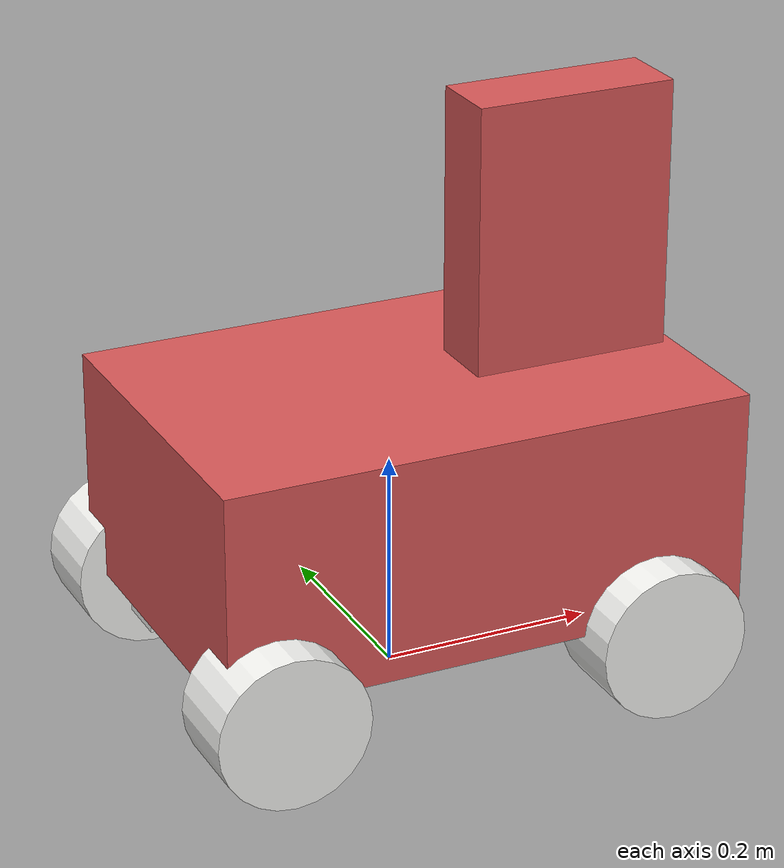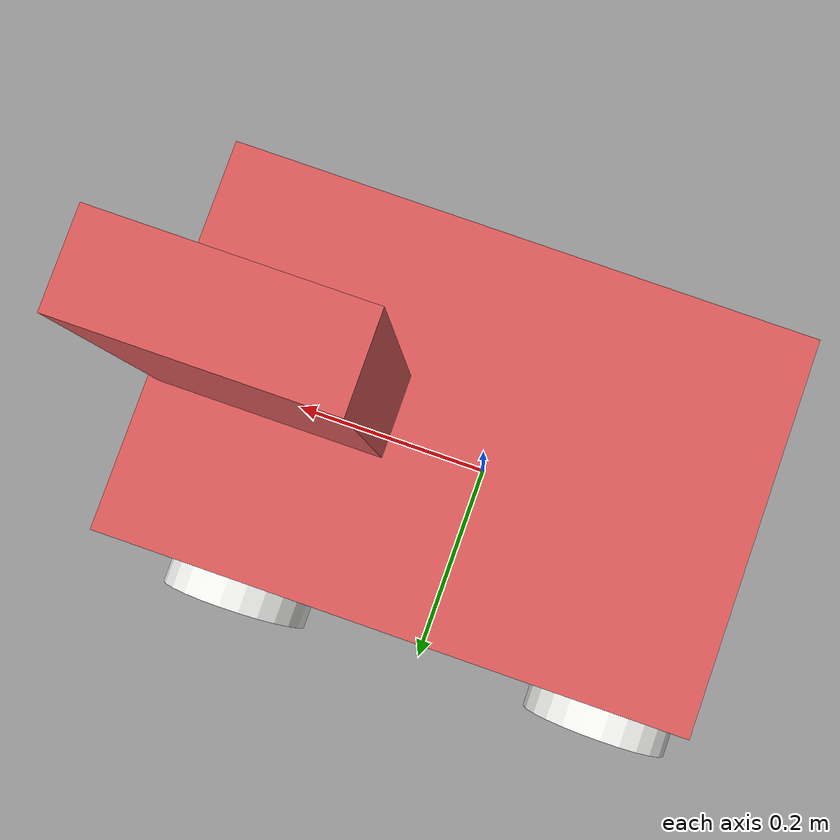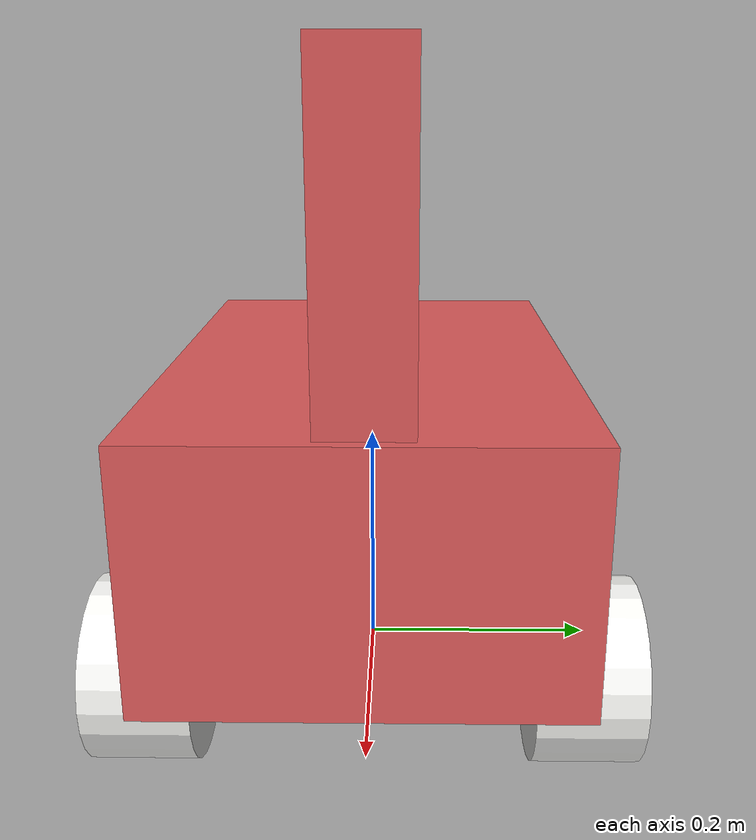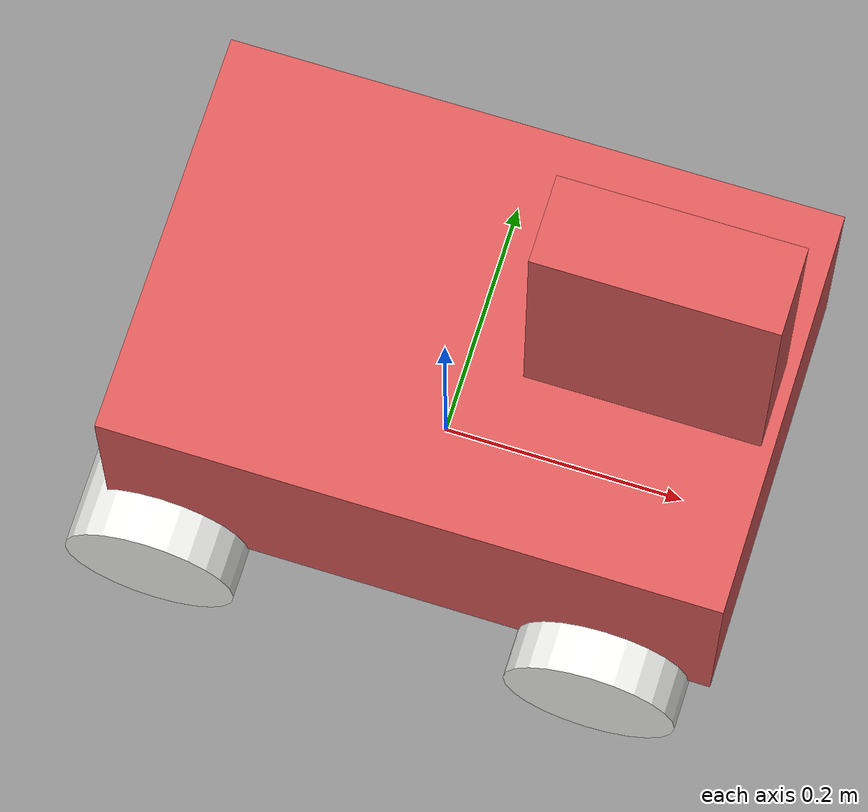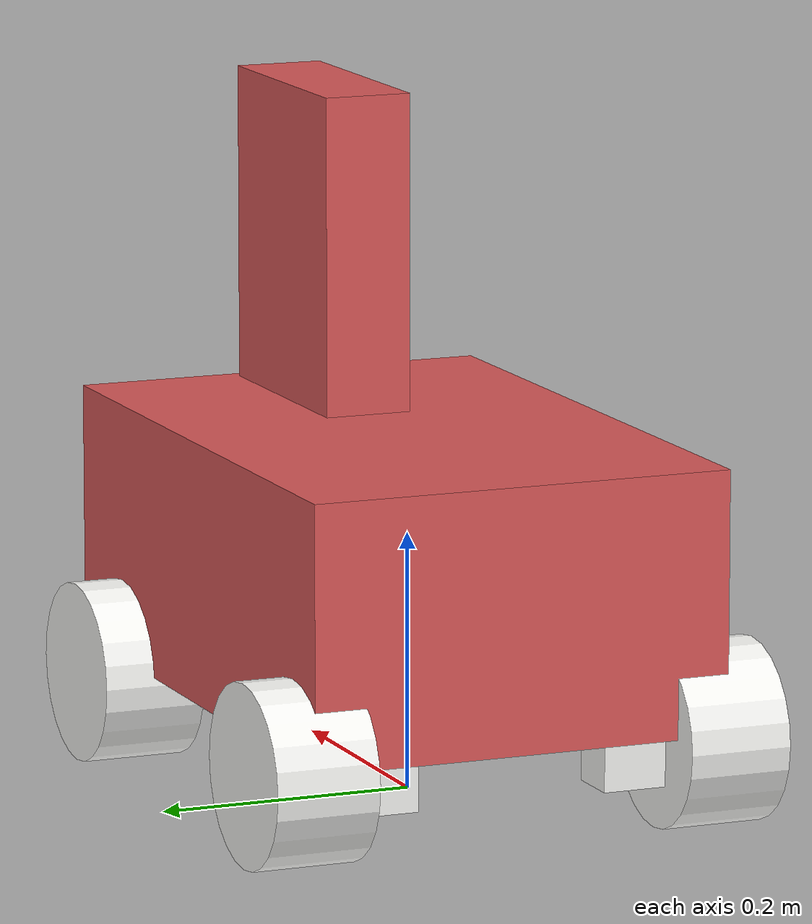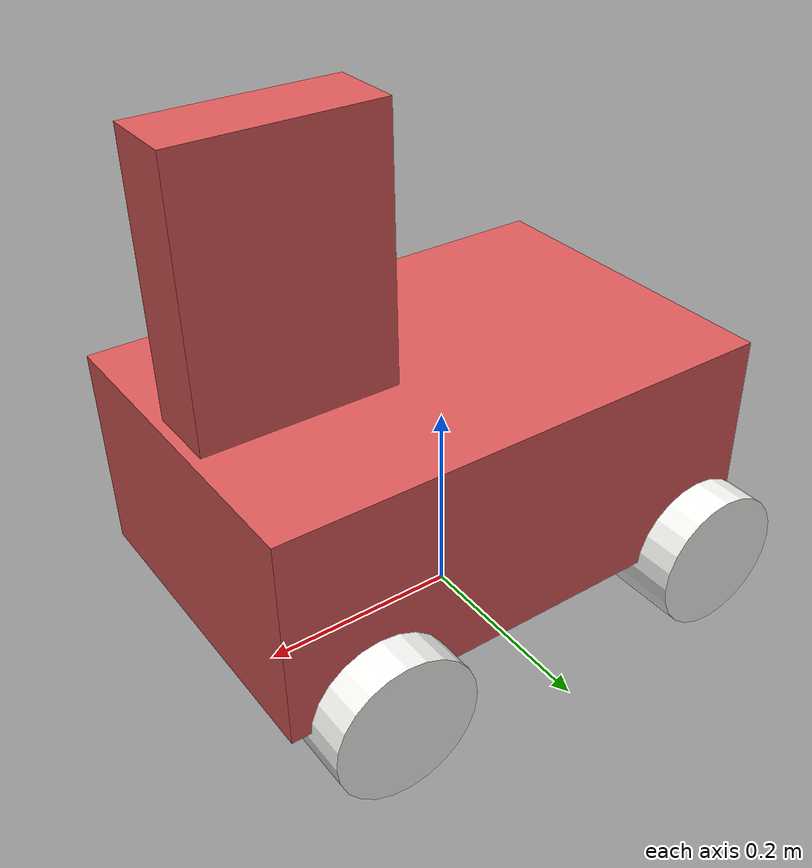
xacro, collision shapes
<?xml version="1.0" encoding="utf-8"?>
<!-- Robot model. Optional ros2_control block for real hardware (see enable_ros2_control). -->
<robot xmlns:xacro="http://www.ros.org/wiki/xacro" name="gripperx_v1">
  <xacro:arg name="mesh_dir" default="package://gripperx_description/meshes" />
  <xacro:arg name="use_lidar" default="false" />
  <xacro:arg name="use_camera" default="false" />
  <xacro:arg name="enable_ros2_control" default="false" />
  <xacro:arg name="ros2_control_name" default="gripperx_real_system" />
  <xacro:arg name="ros2_control_plugin" default="gripperx_hardware_interface/GripperXInterface" />
  <xacro:arg name="use_hw_topics" default="true" />

  <xacro:include filename="gripperx_v1.core.xacro" />
  <xacro:include filename="gripperx_v1.lidar.xacro" />
  <xacro:include filename="gripperx_v1.camera.xacro" />
  <xacro:gripperx_robot mesh_dir="$(arg mesh_dir)" />

  <xacro:if value="$(arg use_lidar)">
    <xacro:gripperx_lidar add_gazebo="false" />
  </xacro:if>

  <xacro:if value="$(arg use_camera)">
    <xacro:gripperx_camera mesh_dir="$(arg mesh_dir)" add_gazebo="false" />
  </xacro:if>

  <xacro:if value="$(arg enable_ros2_control)">
    <xacro:include filename="gripperx_v1.ros2_control.xacro" />
    <xacro:gripperx_ros2_control_hardware
      name="$(arg ros2_control_name)"
      plugin="$(arg ros2_control_plugin)"
      use_hw_topics="$(arg use_hw_topics)" />
  </xacro:if>
</robot>

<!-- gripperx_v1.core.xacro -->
<robot xmlns:xacro="http://www.ros.org/wiki/xacro">
  <xacro:macro
    name="mesh_box_link"
    params="name inertial_xyz mass ixx ixy ixz iyy iyz izz mesh_file rgba collision_origin collision_size mesh_uri_root">
    <link name="${name}">
      <inertial>
        <origin xyz="${inertial_xyz}" rpy="0 0 0" />
        <mass value="${mass}" />
        <inertia
          ixx="${ixx}"
          ixy="${ixy}"
          ixz="${ixz}"
          iyy="${iyy}"
          iyz="${iyz}"
          izz="${izz}" />
      </inertial>
      <visual>
        <origin xyz="0 0 0" rpy="0 0 0" />
        <geometry>
          <mesh filename="${mesh_uri_root}/${mesh_file}" />
        </geometry>
        <material name="">
          <color rgba="${rgba}" />
        </material>
      </visual>
      <collision>
        <origin xyz="${collision_origin}" rpy="0 0 0" />
        <geometry>
          <box size="${collision_size}" />
        </geometry>
      </collision>
    </link>
  </xacro:macro>

  <xacro:macro
    name="mesh_cylinder_link"
    params="name inertial_xyz mass ixx ixy ixz iyy iyz izz mesh_file rgba collision_origin collision_radius collision_length mesh_uri_root">
    <link name="${name}">
      <inertial>
        <origin xyz="${inertial_xyz}" rpy="0 0 0" />
        <mass value="${mass}" />
        <inertia
          ixx="${ixx}"
          ixy="${ixy}"
          ixz="${ixz}"
          iyy="${iyy}"
          iyz="${iyz}"
          izz="${izz}" />
      </inertial>
      <visual>
        <origin xyz="0 0 0" rpy="0 0 0" />
        <geometry>
          <mesh filename="${mesh_uri_root}/${mesh_file}" />
        </geometry>
        <material name="">
          <color rgba="${rgba}" />
        </material>
      </visual>
      <collision>
        <origin xyz="${collision_origin}" rpy="0 0 0" />
        <geometry>
          <cylinder radius="${collision_radius}" length="${collision_length}" />
        </geometry>
      </collision>
    </link>
  </xacro:macro>

  <!-- lower/upper are per wheel and NOT symmetric — see the steering-window
       block in the gripperx_robot macro below. -->
  <xacro:macro name="steer_joint" params="name xyz parent child lower upper effort velocity damping friction">
    <joint name="${name}" type="revolute">
      <origin xyz="${xyz}" rpy="0 0 0" />
      <parent link="${parent}" />
      <child link="${child}" />
      <axis xyz="0 0 1" />
      <limit lower="${lower}" upper="${upper}" effort="${effort}" velocity="${velocity}" />
      <dynamics damping="${damping}" friction="${friction}" />
    </joint>
  </xacro:macro>

  <xacro:macro name="drive_joint" params="name xyz rpy parent child axis effort velocity damping friction">
    <joint name="${name}" type="continuous">
      <origin xyz="${xyz}" rpy="${rpy}" />
      <parent link="${parent}" />
      <child link="${child}" />
      <axis xyz="${axis}" />
      <limit effort="${effort}" velocity="${velocity}" />
      <dynamics damping="${damping}" friction="${friction}" />
    </joint>
  </xacro:macro>

  <xacro:macro name="gripperx_robot" params="mesh_dir">
    <xacro:property name="mesh_uri_root" value="${mesh_dir}" />
    <xacro:property name="steer_outward_limit" value="2.181662" />
    <xacro:property name="steer_inward_limit" value="0.610865" />
    <xacro:property name="joint_effort" value="10" />
    <xacro:property name="joint_velocity" value="10" />
    <xacro:property name="joint_damping" value="0.1" />
    <xacro:property name="joint_friction" value="0.1" />
    <xacro:property name="wheel_rgba" value="0.964705882352941 0.964705882352941 0.952941176470588 1" />
    <xacro:property name="base_rgba" value="0.854901960784314 0.349019607843137 0.349019607843137 1" />
    <xacro:property name="wheel_collision_length" value="0.080" />

    <xacro:property name="wheel_radius" value="0.070" />
    <xacro:property name="track_width" value="0.2174" />
    <!-- CAD wheelbase 0.3618 m, split symmetrically about the king-pin centroid. -->
    <xacro:property name="front_axle_x" value="0.1809" />
    <xacro:property name="rear_axle_x" value="-0.1809" />
    <xacro:property name="wheelbase" value="${front_axle_x - rear_axle_x}" />
    <xacro:property name="left_steer_y" value="${track_width / 2.0}" />
    <xacro:property name="right_steer_y" value="${-track_width / 2.0}" />
    <xacro:property name="steer_mount_z_nominal" value="0.0303" />

    <xacro:property name="front_left_steer_xyz" value="${front_axle_x + 0.000065} ${left_steer_y} ${steer_mount_z_nominal}" />
    <xacro:property name="front_right_steer_xyz" value="${front_axle_x - 0.000065} ${right_steer_y} ${steer_mount_z_nominal}" />
    <xacro:property name="back_left_steer_xyz" value="${rear_axle_x - 0.000065} ${left_steer_y} ${steer_mount_z_nominal}" />
    <xacro:property name="back_right_steer_xyz" value="${rear_axle_x + 0.000065} ${right_steer_y} ${steer_mount_z_nominal}" />

    <xacro:property name="front_left_wheel_offset_xyz" value="-0.000065 0.055572 -0.1169" />
    <xacro:property name="back_left_wheel_offset_xyz" value="0.000065 0.055572 -0.1169" />
    <xacro:property name="back_right_wheel_offset_xyz" value="-0.000065 -0.055571 -0.1169" />
    <xacro:property name="front_right_wheel_offset_xyz" value="0.000065 -0.055372 -0.1169" />

    <xacro:property name="front_left_wheel_rpy" value="-1.5708 0 0" />
    <xacro:property name="back_left_wheel_rpy" value="-1.5708 0 0" />
    <xacro:property name="back_right_wheel_rpy" value="-1.5708 0 0" />
    <xacro:property name="front_right_wheel_rpy" value="-1.5708 0 0" />
    <xacro:property name="base_footprint_to_base_link_z" value="0.1566" />

    <link name="base_footprint" />

    <link name="base_link" />

    <joint name="base_footprint_joint" type="fixed">
      <origin xyz="0 0 ${base_footprint_to_base_link_z}" rpy="0 0 0" />
      <parent link="base_footprint" />
      <child link="base_link" />
    </joint>

    <xacro:mesh_box_link
      name="chassis_link"
      inertial_xyz="-0.0202853583615552 -0.0035672102008257 0.0384224210186663"
      mass="2.2668069894461"
      ixx="0.00935572177906156"
      ixy="7.8725799589304E-09"
      ixz="0.00155513248174071"
      iyy="0.013073444250648"
      iyz="-4.07017227501552E-08"
      izz="0.017855946897602"
      mesh_file="base_link.stl"
      rgba="${base_rgba}"
      collision_origin="0.021541 0 0.021047"
      collision_size="0.493083 0.330200 0.202094"
      mesh_uri_root="${mesh_uri_root}" />

    <joint name="base_to_chassis_joint" type="fixed">
      <origin xyz="0 0 0" rpy="0 0 0" />
      <parent link="base_link" />
      <child link="chassis_link" />
    </joint>

    <link name="arm_stowed_link">
      <inertial>
        <origin xyz="0 0 0" rpy="0 0 0" />
        <mass value="0.001" />
        <inertia ixx="1e-6" ixy="0.0" ixz="0.0" iyy="1e-6" iyz="0.0" izz="1e-6" />
      </inertial>
      <visual>
        <origin xyz="0 0 0" rpy="0 0 0" />
        <geometry>
          <mesh filename="${mesh_uri_root}/arm_stowed.stl" />
        </geometry>
        <material name="">
          <color rgba="${base_rgba}" />
        </material>
      </visual>
      <collision>
        <origin xyz="0.003300 -0.006237 -0.104046" rpy="0 0 0" />
        <geometry>
          <box size="0.068653 0.186842 0.300523" />
        </geometry>
      </collision>
    </link>

    <joint name="arm_stowed_joint" type="fixed">
      <origin xyz="0.171223 -0.000151 0.115294" rpy="${pi} 0 ${pi/2}" />
      <parent link="chassis_link" />
      <child link="arm_stowed_link" />
    </joint>

    <link name="imu_link">
      <inertial>
        <origin xyz="0 0 0" rpy="0 0 0" />
        <mass value="0.001" />
        <inertia ixx="1e-6" ixy="0.0" ixz="0.0" iyy="1e-6" iyz="0.0" izz="1e-6" />
      </inertial>
    </link>

    <joint name="imu_joint" type="fixed">
      <origin xyz="0 0 0.08" rpy="0 0 0" />
      <parent link="chassis_link" />
      <child link="imu_link" />
    </joint>

    <xacro:mesh_box_link
      name="front_left_steer"
      inertial_xyz="0.00013064414965952 -0.00712793384390203 -0.099167907470358"
      mass="0.251781132487417"
      ixx="0.00021743551373503"
      ixy="1.36860311137519E-06"
      ixz="5.07501890882553E-07"
      iyy="0.000126727845844533"
      iyz="-3.34647392291718E-05"
      izz="0.000169195629547439"
      mesh_file="front_left_steer.stl"
      rgba="${wheel_rgba}"
      collision_origin="-0.000065 -0.005429 -0.075450"
      collision_size="0.043246 0.057000 0.150900"
      mesh_uri_root="${mesh_uri_root}" />

    <xacro:steer_joint
      name="f_left_steer"
      xyz="${front_left_steer_xyz}"
      parent="chassis_link"
      child="front_left_steer"
      lower="${-steer_outward_limit}"
      upper="${steer_inward_limit}"
      effort="${joint_effort}"
      velocity="${joint_velocity}"
      damping="${joint_damping}"
      friction="${joint_friction}" />

    <xacro:mesh_cylinder_link
      name="front_left_wheel"
      inertial_xyz="-0.000152709268499918 -9.70744181462424E-07 -0.0293675372404548"
      mass="0.115832809619263"
      ixx="0.000133495109179925"
      ixy="7.48118425206543E-14"
      ixz="4.06679703392529E-09"
      iyy="0.000133508500148116"
      iyz="-7.10495622112089E-10"
      izz="0.000211939042658774"
      mesh_file="front_left_wheel.stl"
      rgba="${wheel_rgba}"
      collision_origin="0 0 0"
      collision_radius="${wheel_radius}"
      collision_length="${wheel_collision_length}"
      mesh_uri_root="${mesh_uri_root}" />

    <xacro:drive_joint
      name="f_leftwheel"
      xyz="${front_left_wheel_offset_xyz}"
      rpy="${front_left_wheel_rpy}"
      parent="front_left_steer"
      child="front_left_wheel"
      axis="0 0 1"
      effort="${joint_effort}"
      velocity="${joint_velocity}"
      damping="${joint_damping}"
      friction="${joint_friction}" />

    <xacro:mesh_box_link
      name="back_left_steer"
      inertial_xyz="9.28109305935038E-05 -0.00712852545284898 -0.101167907583658"
      mass="0.251781132525178"
      ixx="0.000217447487430463"
      ixy="8.87032766970658E-07"
      ixz="3.29855165907127E-07"
      iyy="0.000126715873155165"
      iyz="-3.34669623327156E-05"
      izz="0.000169195628565899"
      mesh_file="back_left_steer.stl"
      rgba="${wheel_rgba}"
      collision_origin="0.000065 -0.005429 -0.075450"
      collision_size="0.043246 0.057000 0.150900"
      mesh_uri_root="${mesh_uri_root}" />

    <xacro:steer_joint
      name="b_leftsteer"
      xyz="${back_left_steer_xyz}"
      parent="chassis_link"
      child="back_left_steer"
      lower="${-steer_inward_limit}"
      upper="${steer_outward_limit}"
      effort="${joint_effort}"
      velocity="${joint_velocity}"
      damping="${joint_damping}"
      friction="${joint_friction}" />

    <xacro:mesh_cylinder_link
      name="back_left_wheel"
      inertial_xyz="-0.000152709267548859 -9.71167783692106E-07 -0.029367537223414"
      mass="0.115832809709875"
      ixx="0.000133495109180129"
      ixy="3.73920551199565E-14"
      ixz="4.06679907772533E-09"
      iyy="0.00013350850014901"
      iyz="-7.10484063198117E-10"
      izz="0.000211939042658999"
      mesh_file="back_left_wheel.stl"
      rgba="${wheel_rgba}"
      collision_origin="0 0 0"
      collision_radius="${wheel_radius}"
      collision_length="${wheel_collision_length}"
      mesh_uri_root="${mesh_uri_root}" />

    <xacro:drive_joint
      name="b_leftwheel"
      xyz="${back_left_wheel_offset_xyz}"
      rpy="${back_left_wheel_rpy}"
      parent="back_left_steer"
      child="back_left_wheel"
      axis="0 0 1"
      effort="${joint_effort}"
      velocity="${joint_velocity}"
      damping="${joint_damping}"
      friction="${joint_friction}" />

    <xacro:mesh_box_link
      name="back_right_steer"
      inertial_xyz="3.09555434352959E-05 0.00694767645726482 -0.104187659676429"
      mass="0.229463165297732"
      ixx="0.000207384199528673"
      ixy="-7.31104211905778E-07"
      ixz="2.67266326731571E-07"
      iyy="0.000116493139211524"
      iyz="3.35524819424789E-05"
      izz="0.00016798247146896"
      mesh_file="back_right_steer.stl"
      rgba="${wheel_rgba}"
      collision_origin="-0.000065 0.005429 -0.075450"
      collision_size="0.043246 0.057000 0.150900"
      mesh_uri_root="${mesh_uri_root}" />

    <xacro:steer_joint
      name="b_rightsteer"
      xyz="${back_right_steer_xyz}"
      parent="chassis_link"
      child="back_right_steer"
      lower="${-steer_outward_limit}"
      upper="${steer_inward_limit}"
      effort="${joint_effort}"
      velocity="${joint_velocity}"
      damping="${joint_damping}"
      friction="${joint_friction}" />

    <xacro:mesh_cylinder_link
      name="back_right_wheel"
      inertial_xyz="0.000152709273591192 -9.71170377131458E-07 0.0293675371615253"
      mass="0.115832810022218"
      ixx="0.000133495109183378"
      ixy="-3.62614646190951E-14"
      ixz="4.06680017161528E-09"
      iyy="0.000133508500154647"
      iyz="7.10483036587695E-10"
      izz="0.000211939042659798"
      mesh_file="back_right_wheel.stl"
      rgba="${wheel_rgba}"
      collision_origin="0 0 0"
      collision_radius="${wheel_radius}"
      collision_length="${wheel_collision_length}"
      mesh_uri_root="${mesh_uri_root}" />

    <xacro:drive_joint
      name="b_rightwheel"
      xyz="${back_right_wheel_offset_xyz}"
      rpy="${back_right_wheel_rpy}"
      parent="back_right_steer"
      child="back_right_wheel"
      axis="0 0 1"
      effort="${joint_effort}"
      velocity="${joint_velocity}"
      damping="${joint_damping}"
      friction="${joint_friction}" />

    <xacro:mesh_box_link
      name="front_right_steer"
      inertial_xyz="4.05809295395687E-05 0.00712901046523262 -0.0991679078738846"
      mass="0.251781132690095"
      ixx="0.000217448974290903"
      ixy="-8.0742080901355E-07"
      ixz="2.95193136544424E-07"
      iyy="0.00012671438820613"
      iyz="3.34672871896417E-05"
      izz="0.000169195626775715"
      mesh_file="front_right_steer.stl"
      rgba="${wheel_rgba}"
      collision_origin="0.000065 0.005629 -0.075450"
      collision_size="0.043246 0.057000 0.150900"
      mesh_uri_root="${mesh_uri_root}" />

    <xacro:steer_joint
      name="f_right_steer"
      xyz="${front_right_steer_xyz}"
      parent="chassis_link"
      child="front_right_steer"
      lower="${-steer_inward_limit}"
      upper="${steer_outward_limit}"
      effort="${joint_effort}"
      velocity="${joint_velocity}"
      damping="${joint_damping}"
      friction="${joint_friction}" />

    <xacro:mesh_cylinder_link
      name="front_right_wheel"
      inertial_xyz="0.00015270927387756 -9.71170482401418E-07 0.0293675371584356"
      mass="0.115832810036923"
      ixx="0.000133495109183675"
      ixy="-3.62122798652987E-14"
      ixz="4.06680027009567E-09"
      iyy="0.000133508500155057"
      iyz="7.10482989342022E-10"
      izz="0.000211939042659837"
      mesh_file="front_right_wheel.stl"
      rgba="${wheel_rgba}"
      collision_origin="0 0 0"
      collision_radius="${wheel_radius}"
      collision_length="${wheel_collision_length}"
      mesh_uri_root="${mesh_uri_root}" />

    <xacro:drive_joint
      name="f_rightwheel"
      xyz="${front_right_wheel_offset_xyz}"
      rpy="${front_right_wheel_rpy}"
      parent="front_right_steer"
      child="front_right_wheel"
      axis="0 0 1"
      effort="${joint_effort}"
      velocity="${joint_velocity}"
      damping="${joint_damping}"
      friction="${joint_friction}" />
  </xacro:macro>
</robot>
